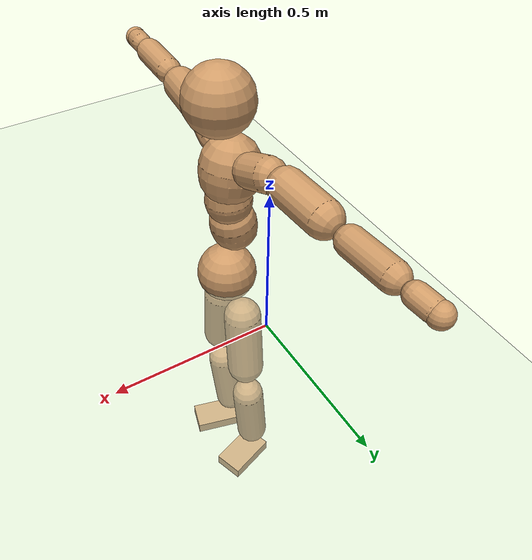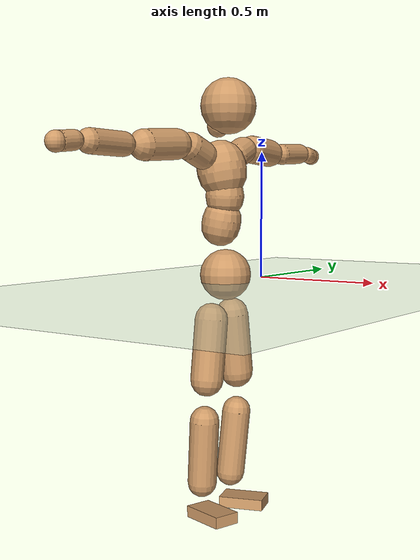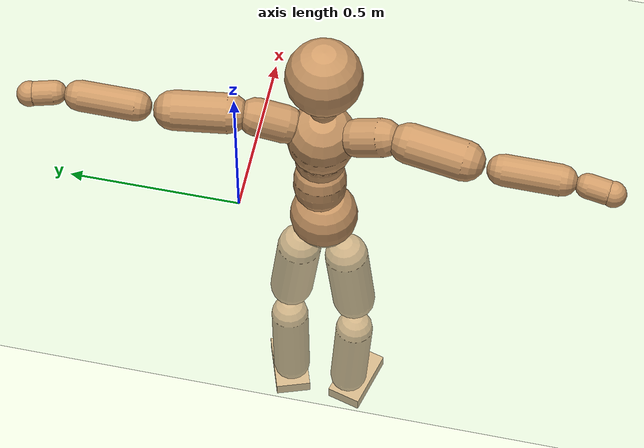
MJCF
<mujoco model="humanoid">
  <compiler coordinate="local"/>
  <default>
    <joint damping="0.0" armature="0.01" stiffness="0.0" limited="true"/>
    <geom conaffinity="1" condim="3" contype="7" margin="0.001" rgba="0.8 0.6 .4 1"/>
  </default>
  <asset>
    <texture type="skybox" builtin="gradient" rgb1=".4 .5 .6" rgb2="0 0 0" width="100" height="100"/>
    <texture builtin="flat" height="1278" mark="cross" markrgb="1 1 1" name="texgeom" random="0.01" rgb1="0.8 0.6 0.4" rgb2="0.8 0.6 0.4" type="cube" width="127"/>
    <texture builtin="checker" height="100" name="texplane" rgb1="0 0 0" rgb2="0.8 0.8 0.8" type="2d" width="100"/>
    <material name="MatPlane" reflectance="0.5" shininess="1" specular="1" texrepeat="60 60" texture="texplane"/>
    <material name="geom" texture="texgeom" texuniform="true"/>
  </asset>
  <worldbody>
    <light cutoff="100" diffuse="1 1 1" dir="-0 0 -1.3" directional="true" exponent="1" pos="0 0 1.3" specular=".1 .1 .1"/>
    <geom conaffinity="1" condim="3" name="floor" pos="0 0 0" rgba="0.8 0.9 0.8 1" size="100 100 .2" type="plane" material="MatPlane"/>
    <body name="Pelvis" pos="-0.0021 -0.25 0.0271">
      <freejoint name="Pelvis"/>
      <geom type="sphere" contype="1" conaffinity="1" density="500" size="0.0977" pos="0.0000 0.0000 0.0000" name="Pelvis"/>
      <body name="L_Hip" pos="-0.0191 0.0598 -0.0837">
        <joint name="L_Hip_x" type="hinge" pos="0 0 0" axis="1 0 0" stiffness="800" damping="80" armature="0.02" range="-180.0000 180.0000"/>
        <joint name="L_Hip_y" type="hinge" pos="0 0 0" axis="0 1 0" stiffness="800" damping="80" armature="0.02" range="-180.0000 180.0000"/>
        <joint name="L_Hip_z" type="hinge" pos="0 0 0" axis="0 0 1" stiffness="800" damping="80" armature="0.02" range="-180.0000 180.0000"/>
        <geom type="capsule" contype="1" conaffinity="1" density="500" fromto="0.0016 0.0088 -0.0773 0.0062 0.0351 -0.3092" size="0.0636" name="L_Hip"/>
        <body name="L_Knee" pos="0.0078 0.0439 -0.3865">
          <joint name="L_Knee_x" type="hinge" pos="0 0 0" axis="1 0 0" stiffness="800" damping="80" armature="0.02" range="-180.0000 180.0000"/>
          <joint name="L_Knee_y" type="hinge" pos="0 0 0" axis="0 1 0" stiffness="800" damping="80" armature="0.02" range="-180.0000 180.0000"/>
          <joint name="L_Knee_z" type="hinge" pos="0 0 0" axis="0 0 1" stiffness="800" damping="80" armature="0.02" range="-180.0000 180.0000"/>
          <geom type="capsule" contype="1" conaffinity="1" density="500" fromto="-0.0076 -0.0029 -0.0845 -0.0304 -0.0116 -0.3380" size="0.0562" name="L_Knee"/>
          <body name="L_Ankle" pos="-0.038 -0.0145 -0.4224">
            <joint name="L_Ankle_x" type="hinge" pos="0 0 0" axis="1 0 0" stiffness="800" damping="80" armature="0.02" range="-180.0000 180.0000"/>
            <joint name="L_Ankle_y" type="hinge" pos="0 0 0" axis="0 1 0" stiffness="800" damping="80" armature="0.02" range="-180.0000 180.0000"/>
            <joint name="L_Ankle_z" type="hinge" pos="0 0 0" axis="0 0 1" stiffness="800" damping="80" armature="0.02" range="-180.0000 180.0000"/>
            <geom type="box" contype="1" conaffinity="1" density="500" pos="0.0608 0.0206 -0.0301" size="0.0886 0.0524 0.0215" quat="0.9866 0.0000 0.0000 0.1629" name="L_Ankle"/>
            <body name="L_Toe" pos="0.1216 0.0413 -0.0603">
              <joint name="L_Toe_x" type="hinge" pos="0 0 0" axis="1 0 0" stiffness="500" damping="50" armature="0.02" range="-180.0000 180.0000"/>
              <joint name="L_Toe_y" type="hinge" pos="0 0 0" axis="0 1 0" stiffness="500" damping="50" armature="0.02" range="-180.0000 180.0000"/>
              <joint name="L_Toe_z" type="hinge" pos="0 0 0" axis="0 0 1" stiffness="500" damping="50" armature="0.02" range="-180.0000 180.0000"/>
              <geom type="box" contype="1" conaffinity="1" density="500" pos="0.0000 0.0000 0.0296" size="0.0011 0.0025 0.0011" quat="0.9859 0.0000 0.0000 0.1676" name="L_Toe"/>
            </body>
          </body>
        </body>
      </body>
      <body name="R_Hip" pos="-0.0154 -0.0616 -0.0914">
        <joint name="R_Hip_x" type="hinge" pos="0 0 0" axis="1 0 0" stiffness="800" damping="80" armature="0.02" range="-180.0000 180.0000"/>
        <joint name="R_Hip_y" type="hinge" pos="0 0 0" axis="0 1 0" stiffness="800" damping="80" armature="0.02" range="-180.0000 180.0000"/>
        <joint name="R_Hip_z" type="hinge" pos="0 0 0" axis="0 0 1" stiffness="800" damping="80" armature="0.02" range="-180.0000 180.0000"/>
        <geom type="capsule" contype="1" conaffinity="1" density="500" fromto="-0.0010 -0.0087 -0.0767 -0.0039 -0.0347 -0.3069" size="0.063" name="R_Hip"/>
        <body name="R_Knee" pos="-0.0049 -0.0434 -0.3837">
          <joint name="R_Knee_x" type="hinge" pos="0 0 0" axis="1 0 0" stiffness="800" damping="80" armature="0.02" range="-180.0000 180.0000"/>
          <joint name="R_Knee_y" type="hinge" pos="0 0 0" axis="0 1 0" stiffness="800" damping="80" armature="0.02" range="-180.0000 180.0000"/>
          <joint name="R_Knee_z" type="hinge" pos="0 0 0" axis="0 0 1" stiffness="800" damping="80" armature="0.02" range="-180.0000 180.0000"/>
          <geom type="capsule" contype="1" conaffinity="1" density="500" fromto="-0.0071 0.0038 -0.0832 -0.0282 0.0152 -0.3328" size="0.0563" name="R_Knee"/>
          <body name="R_Ankle" pos="-0.0353 0.0189 -0.416">
            <joint name="R_Ankle_x" type="hinge" pos="0 0 0" axis="1 0 0" stiffness="800" damping="80" armature="0.02" range="-180.0000 180.0000"/>
            <joint name="R_Ankle_y" type="hinge" pos="0 0 0" axis="0 1 0" stiffness="800" damping="80" armature="0.02" range="-180.0000 180.0000"/>
            <joint name="R_Ankle_z" type="hinge" pos="0 0 0" axis="0 0 1" stiffness="800" damping="80" armature="0.02" range="-180.0000 180.0000"/>
            <geom type="box" contype="1" conaffinity="1" density="500" pos="0.0650 -0.0178 -0.0308" size="0.0903 0.0516 0.0219" quat="0.9911 0.0000 0.0000 -0.1331" name="R_Ankle"/>
            <body name="R_Toe" pos="0.1299 -0.0355 -0.0617">
              <joint name="R_Toe_x" type="hinge" pos="0 0 0" axis="1 0 0" stiffness="500" damping="50" armature="0.02" range="-180.0000 180.0000"/>
              <joint name="R_Toe_y" type="hinge" pos="0 0 0" axis="0 1 0" stiffness="500" damping="50" armature="0.02" range="-180.0000 180.0000"/>
              <joint name="R_Toe_z" type="hinge" pos="0 0 0" axis="0 0 1" stiffness="500" damping="50" armature="0.02" range="-180.0000 180.0000"/>
              <geom type="box" contype="1" conaffinity="1" density="500" pos="0.0000 0.0000 0.0310" size="0.0011 0.0025 0.0011" quat="0.9923 0.0000 0.0000 -0.1241" name="R_Toe"/>
            </body>
          </body>
        </body>
      </body>
      <body name="Torso" pos="-0.0383 0.0043 0.1259">
        <joint name="Torso_x" type="hinge" pos="0 0 0" axis="1 0 0" stiffness="1000" damping="100" armature="0.02" range="-180.0000 180.0000"/>
        <joint name="Torso_y" type="hinge" pos="0 0 0" axis="0 1 0" stiffness="1000" damping="100" armature="0.02" range="-180.0000 180.0000"/>
        <joint name="Torso_z" type="hinge" pos="0 0 0" axis="0 0 1" stiffness="1000" damping="100" armature="0.02" range="-180.0000 180.0000"/>
        <geom type="capsule" contype="1" conaffinity="1" density="500" fromto="0.0171 0.0028 0.0863 0.0114 0.0019 0.0575" size="0.074493" name="Torso"/>
        <body name="Spine" pos="0.0284 0.0047 0.1438">
          <joint name="Spine_x" type="hinge" pos="0 0 0" axis="1 0 0" stiffness="1000" damping="100" armature="0.02" range="-180.0000 180.0000"/>
          <joint name="Spine_y" type="hinge" pos="0 0 0" axis="0 1 0" stiffness="1000" damping="100" armature="0.02" range="-180.0000 180.0000"/>
          <joint name="Spine_z" type="hinge" pos="0 0 0" axis="0 0 1" stiffness="1000" damping="100" armature="0.02" range="-180.0000 180.0000"/>
          <geom type="capsule" contype="1" conaffinity="1" density="500" fromto="0.0020 -0.0013 0.0351 0.0013 -0.0009 0.0234" size="0.073377" name="Spine"/>
          <body name="Chest" pos="0.0033 -0.0022 0.0586">
            <joint name="Chest_x" type="hinge" pos="0 0 0" axis="1 0 0" stiffness="1000" damping="100" armature="0.02" range="-180.0000 180.0000"/>
            <joint name="Chest_y" type="hinge" pos="0 0 0" axis="0 1 0" stiffness="1000" damping="100" armature="0.02" range="-180.0000 180.0000"/>
            <joint name="Chest_z" type="hinge" pos="0 0 0" axis="0 0 1" stiffness="1000" damping="100" armature="0.02" range="-180.0000 180.0000"/>
            <geom type="capsule" contype="1" conaffinity="1" density="500" fromto="-0.0152 -0.0050 0.0888 -0.0101 -0.0033 0.0592" size="0.094674" name="Chest"/>
            <body name="Neck" pos="-0.0338 -0.0133 0.2159">
              <joint name="Neck_x" type="hinge" pos="0 0 0" axis="1 0 0" stiffness="500" damping="50" armature="0.02" range="-180.0000 180.0000"/>
              <joint name="Neck_y" type="hinge" pos="0 0 0" axis="0 1 0" stiffness="500" damping="50" armature="0.02" range="-180.0000 180.0000"/>
              <joint name="Neck_z" type="hinge" pos="0 0 0" axis="0 0 1" stiffness="500" damping="50" armature="0.02" range="-180.0000 180.0000"/>
              <geom type="capsule" contype="1" conaffinity="1" density="500" fromto="0.0104 0.0021 0.0185 0.0417 0.0082 0.0738" size="0.042408" name="Neck"/>
              <body name="Head" pos="0.0521 0.0103 0.0923">
                <joint name="Head_x" type="hinge" pos="0 0 0" axis="1 0 0" stiffness="500" damping="50" armature="0.02" range="-180.0000 180.0000"/>
                <joint name="Head_y" type="hinge" pos="0 0 0" axis="0 1 0" stiffness="500" damping="50" armature="0.02" range="-180.0000 180.0000"/>
                <joint name="Head_z" type="hinge" pos="0 0 0" axis="0 0 1" stiffness="500" damping="50" armature="0.02" range="-180.0000 180.0000"/>
                <geom type="sphere" contype="1" conaffinity="1" density="500" size="0.1055" pos="0.0000 0.0000 0.0000" name="Head"/>
              </body>
            </body>
            <body name="L_Thorax" pos="-0.0182 0.0719 0.115">
              <joint name="L_Thorax_x" type="hinge" pos="0 0 0" axis="1 0 0" stiffness="500" damping="50" armature="0.02" range="-180.0000 180.0000"/>
              <joint name="L_Thorax_y" type="hinge" pos="0 0 0" axis="0 1 0" stiffness="500" damping="50" armature="0.02" range="-180.0000 180.0000"/>
              <joint name="L_Thorax_z" type="hinge" pos="0 0 0" axis="0 0 1" stiffness="500" damping="50" armature="0.02" range="-180.0000 180.0000"/>
              <geom type="capsule" contype="1" conaffinity="1" density="500" fromto="-0.0038 0.0246 0.0091 -0.0152 0.0984 0.0364" size="0.0532" name="L_Thorax"/>
              <body name="L_Shoulder" pos="-0.019 0.123 0.0455">
                <joint name="L_Shoulder_x" type="hinge" pos="0 0 0" axis="1 0 0" stiffness="500" damping="50" armature="0.02" range="-720.0000 720.0000"/>
                <joint name="L_Shoulder_y" type="hinge" pos="0 0 0" axis="0 1 0" stiffness="500" damping="50" armature="0.02" range="-720.0000 720.0000"/>
                <joint name="L_Shoulder_z" type="hinge" pos="0 0 0" axis="0 0 1" stiffness="500" damping="50" armature="0.02" range="-720.0000 720.0000"/>
                <geom type="capsule" contype="1" conaffinity="1" density="500" fromto="-0.0045 0.0500 -0.0031 -0.0179 0.2001 -0.0124" size="0.0557" name="L_Shoulder"/>
                <body name="L_Elbow" pos="-0.0223 0.2502 -0.0155">
                  <joint name="L_Elbow_x" type="hinge" pos="0 0 0" axis="1 0 0" stiffness="500" damping="50" armature="0.02" range="-720.0000 720.0000"/>
                  <joint name="L_Elbow_y" type="hinge" pos="0 0 0" axis="0 1 0" stiffness="500" damping="50" armature="0.02" range="-720.0000 720.0000"/>
                  <joint name="L_Elbow_z" type="hinge" pos="0 0 0" axis="0 0 1" stiffness="500" damping="50" armature="0.02" range="-720.0000 720.0000"/>
                  <geom type="capsule" contype="1" conaffinity="1" density="500" fromto="-0.0014 0.0520 0.0025 -0.0055 0.2081 0.0101" size="0.0429" name="L_Elbow"/>
                  <body name="L_Wrist" pos="-0.0069 0.2601 0.0127">
                    <joint name="L_Wrist_x" type="hinge" pos="0 0 0" axis="1 0 0" stiffness="300" damping="30" armature="0.02" range="-180.0000 180.0000"/>
                    <joint name="L_Wrist_y" type="hinge" pos="0 0 0" axis="0 1 0" stiffness="300" damping="30" armature="0.02" range="-180.0000 180.0000"/>
                    <joint name="L_Wrist_z" type="hinge" pos="0 0 0" axis="0 0 1" stiffness="300" damping="30" armature="0.02" range="-180.0000 180.0000"/>
                    <geom type="capsule" contype="1" conaffinity="1" density="500" fromto="-0.0030 0.0170 -0.0021 -0.0122 0.0681 -0.0085" size="0.0338" name="L_Wrist"/>
                    <body name="L_Hand" pos="-0.0152 0.0852 -0.0106">
                      <joint name="L_Hand_x" type="hinge" pos="0 0 0" axis="1 0 0" stiffness="300" damping="30" armature="0.02" range="-180.0000 180.0000"/>
                      <joint name="L_Hand_y" type="hinge" pos="0 0 0" axis="0 1 0" stiffness="300" damping="30" armature="0.02" range="-180.0000 180.0000"/>
                      <joint name="L_Hand_z" type="hinge" pos="0 0 0" axis="0 0 1" stiffness="300" damping="30" armature="0.02" range="-180.0000 180.0000"/>
                      <geom type="sphere" contype="1" conaffinity="1" density="500" size="0.0351" pos="0.0000 0.0000 0.0000" name="L_Hand"/>
                    </body>
                  </body>
                </body>
              </body>
            </body>
            <body name="R_Thorax" pos="-0.0239 -0.0835 0.1133">
              <joint name="R_Thorax_x" type="hinge" pos="0 0 0" axis="1 0 0" stiffness="500" damping="50" armature="0.02" range="-180.0000 180.0000"/>
              <joint name="R_Thorax_y" type="hinge" pos="0 0 0" axis="0 1 0" stiffness="500" damping="50" armature="0.02" range="-180.0000 180.0000"/>
              <joint name="R_Thorax_z" type="hinge" pos="0 0 0" axis="0 0 1" stiffness="500" damping="50" armature="0.02" range="-180.0000 180.0000"/>
              <geom type="capsule" contype="1" conaffinity="1" density="500" fromto="-0.0017 -0.0228 0.0094 -0.0069 -0.0911 0.0377" size="0.0533" name="R_Thorax"/>
              <body name="R_Shoulder" pos="-0.0087 -0.1138 0.0472">
                <joint name="R_Shoulder_x" type="hinge" pos="0 0 0" axis="1 0 0" stiffness="500" damping="50" armature="0.02" range="-720.0000 720.0000"/>
                <joint name="R_Shoulder_y" type="hinge" pos="0 0 0" axis="0 1 0" stiffness="500" damping="50" armature="0.02" range="-720.0000 720.0000"/>
                <joint name="R_Shoulder_z" type="hinge" pos="0 0 0" axis="0 0 1" stiffness="500" damping="50" armature="0.02" range="-720.0000 720.0000"/>
                <geom type="capsule" contype="1" conaffinity="1" density="500" fromto="-0.0063 -0.0510 -0.0029 -0.0252 -0.2041 -0.0115" size="0.0564" name="R_Shoulder"/>
                <body name="R_Elbow" pos="-0.0315 -0.2551 -0.0144">
                  <joint name="R_Elbow_x" type="hinge" pos="0 0 0" axis="1 0 0" stiffness="500" damping="50" armature="0.02" range="-720.0000 720.0000"/>
                  <joint name="R_Elbow_y" type="hinge" pos="0 0 0" axis="0 1 0" stiffness="500" damping="50" armature="0.02" range="-720.0000 720.0000"/>
                  <joint name="R_Elbow_z" type="hinge" pos="0 0 0" axis="0 0 1" stiffness="500" damping="50" armature="0.02" range="-720.0000 720.0000"/>
                  <geom type="capsule" contype="1" conaffinity="1" density="500" fromto="-0.0011 -0.0527 0.0012 -0.0045 -0.2108 0.0047" size="0.0435" name="R_Elbow"/>
                  <body name="R_Wrist" pos="-0.0056 -0.2636 0.0058">
                    <joint name="R_Wrist_x" type="hinge" pos="0 0 0" axis="1 0 0" stiffness="300" damping="30" armature="0.02" range="-180.0000 180.0000"/>
                    <joint name="R_Wrist_y" type="hinge" pos="0 0 0" axis="0 1 0" stiffness="300" damping="30" armature="0.02" range="-180.0000 180.0000"/>
                    <joint name="R_Wrist_z" type="hinge" pos="0 0 0" axis="0 0 1" stiffness="300" damping="30" armature="0.02" range="-180.0000 180.0000"/>
                    <geom type="capsule" contype="1" conaffinity="1" density="500" fromto="-0.0020 -0.0175 -0.0017 -0.0079 -0.0699 -0.0068" size="0.0344" name="R_Wrist"/>
                    <body name="R_Hand" pos="-0.0099 -0.0873 -0.0085">
                      <joint name="R_Hand_x" type="hinge" pos="0 0 0" axis="1 0 0" stiffness="300" damping="30" armature="0.02" range="-180.0000 180.0000"/>
                      <joint name="R_Hand_y" type="hinge" pos="0 0 0" axis="0 1 0" stiffness="300" damping="30" armature="0.02" range="-180.0000 180.0000"/>
                      <joint name="R_Hand_z" type="hinge" pos="0 0 0" axis="0 0 1" stiffness="300" damping="30" armature="0.02" range="-180.0000 180.0000"/>
                      <geom type="sphere" contype="1" conaffinity="1" density="500" size="0.0356" pos="0.0000 0.0000 0.0000" name="R_Hand"/>
                    </body>
                  </body>
                </body>
              </body>
            </body>
          </body>
        </body>
      </body>
    </body>
  </worldbody>
  <actuator>
    <motor name="L_Hip_x" joint="L_Hip_x" gear="500"/>
    <motor name="L_Hip_y" joint="L_Hip_y" gear="500"/>
    <motor name="L_Hip_z" joint="L_Hip_z" gear="500"/>
    <motor name="L_Knee_x" joint="L_Knee_x" gear="500"/>
    <motor name="L_Knee_y" joint="L_Knee_y" gear="500"/>
    <motor name="L_Knee_z" joint="L_Knee_z" gear="500"/>
    <motor name="L_Ankle_x" joint="L_Ankle_x" gear="500"/>
    <motor name="L_Ankle_y" joint="L_Ankle_y" gear="500"/>
    <motor name="L_Ankle_z" joint="L_Ankle_z" gear="500"/>
    <motor name="L_Toe_x" joint="L_Toe_x" gear="500"/>
    <motor name="L_Toe_y" joint="L_Toe_y" gear="500"/>
    <motor name="L_Toe_z" joint="L_Toe_z" gear="500"/>
    <motor name="R_Hip_x" joint="R_Hip_x" gear="500"/>
    <motor name="R_Hip_y" joint="R_Hip_y" gear="500"/>
    <motor name="R_Hip_z" joint="R_Hip_z" gear="500"/>
    <motor name="R_Knee_x" joint="R_Knee_x" gear="500"/>
    <motor name="R_Knee_y" joint="R_Knee_y" gear="500"/>
    <motor name="R_Knee_z" joint="R_Knee_z" gear="500"/>
    <motor name="R_Ankle_x" joint="R_Ankle_x" gear="500"/>
    <motor name="R_Ankle_y" joint="R_Ankle_y" gear="500"/>
    <motor name="R_Ankle_z" joint="R_Ankle_z" gear="500"/>
    <motor name="R_Toe_x" joint="R_Toe_x" gear="500"/>
    <motor name="R_Toe_y" joint="R_Toe_y" gear="500"/>
    <motor name="R_Toe_z" joint="R_Toe_z" gear="500"/>
    <motor name="Torso_x" joint="Torso_x" gear="500"/>
    <motor name="Torso_y" joint="Torso_y" gear="500"/>
    <motor name="Torso_z" joint="Torso_z" gear="500"/>
    <motor name="Spine_x" joint="Spine_x" gear="500"/>
    <motor name="Spine_y" joint="Spine_y" gear="500"/>
    <motor name="Spine_z" joint="Spine_z" gear="500"/>
    <motor name="Chest_x" joint="Chest_x" gear="500"/>
    <motor name="Chest_y" joint="Chest_y" gear="500"/>
    <motor name="Chest_z" joint="Chest_z" gear="500"/>
    <motor name="Neck_x" joint="Neck_x" gear="500"/>
    <motor name="Neck_y" joint="Neck_y" gear="500"/>
    <motor name="Neck_z" joint="Neck_z" gear="500"/>
    <motor name="Head_x" joint="Head_x" gear="500"/>
    <motor name="Head_y" joint="Head_y" gear="500"/>
    <motor name="Head_z" joint="Head_z" gear="500"/>
    <motor name="L_Thorax_x" joint="L_Thorax_x" gear="500"/>
    <motor name="L_Thorax_y" joint="L_Thorax_y" gear="500"/>
    <motor name="L_Thorax_z" joint="L_Thorax_z" gear="500"/>
    <motor name="L_Shoulder_x" joint="L_Shoulder_x" gear="500"/>
    <motor name="L_Shoulder_y" joint="L_Shoulder_y" gear="500"/>
    <motor name="L_Shoulder_z" joint="L_Shoulder_z" gear="500"/>
    <motor name="L_Elbow_x" joint="L_Elbow_x" gear="500"/>
    <motor name="L_Elbow_y" joint="L_Elbow_y" gear="500"/>
    <motor name="L_Elbow_z" joint="L_Elbow_z" gear="500"/>
    <motor name="L_Wrist_x" joint="L_Wrist_x" gear="500"/>
    <motor name="L_Wrist_y" joint="L_Wrist_y" gear="500"/>
    <motor name="L_Wrist_z" joint="L_Wrist_z" gear="500"/>
    <motor name="L_Hand_x" joint="L_Hand_x" gear="500"/>
    <motor name="L_Hand_y" joint="L_Hand_y" gear="500"/>
    <motor name="L_Hand_z" joint="L_Hand_z" gear="500"/>
    <motor name="R_Thorax_x" joint="R_Thorax_x" gear="500"/>
    <motor name="R_Thorax_y" joint="R_Thorax_y" gear="500"/>
    <motor name="R_Thorax_z" joint="R_Thorax_z" gear="500"/>
    <motor name="R_Shoulder_x" joint="R_Shoulder_x" gear="500"/>
    <motor name="R_Shoulder_y" joint="R_Shoulder_y" gear="500"/>
    <motor name="R_Shoulder_z" joint="R_Shoulder_z" gear="500"/>
    <motor name="R_Elbow_x" joint="R_Elbow_x" gear="500"/>
    <motor name="R_Elbow_y" joint="R_Elbow_y" gear="500"/>
    <motor name="R_Elbow_z" joint="R_Elbow_z" gear="500"/>
    <motor name="R_Wrist_x" joint="R_Wrist_x" gear="500"/>
    <motor name="R_Wrist_y" joint="R_Wrist_y" gear="500"/>
    <motor name="R_Wrist_z" joint="R_Wrist_z" gear="500"/>
    <motor name="R_Hand_x" joint="R_Hand_x" gear="500"/>
    <motor name="R_Hand_y" joint="R_Hand_y" gear="500"/>
    <motor name="R_Hand_z" joint="R_Hand_z" gear="500"/>
  </actuator>
  <contact>
    <exclude body1="Torso" body2="Chest"/>
    <exclude body1="Head" body2="Chest"/>
    <exclude body1="R_Knee" body2="R_Toe"/>
    <exclude body1="R_Knee" body2="L_Ankle"/>
    <exclude body1="R_Knee" body2="L_Toe"/>
    <exclude body1="L_Knee" body2="L_Toe"/>
    <exclude body1="L_Knee" body2="R_Ankle"/>
    <exclude body1="L_Knee" body2="R_Toe"/>
    <exclude body1="L_Shoulder" body2="Chest"/>
    <exclude body1="R_Shoulder" body2="Chest"/>
  </contact>
  <sensor/>
  <size njmax="700" nconmax="700"/>
</mujoco>
